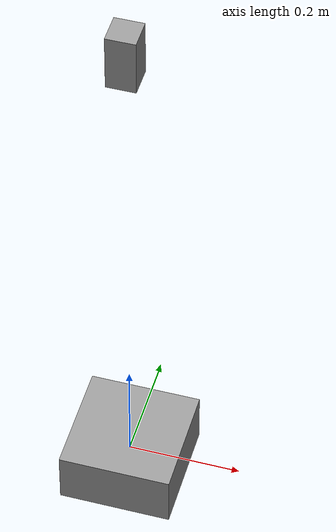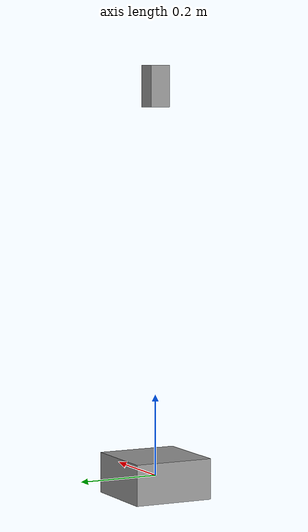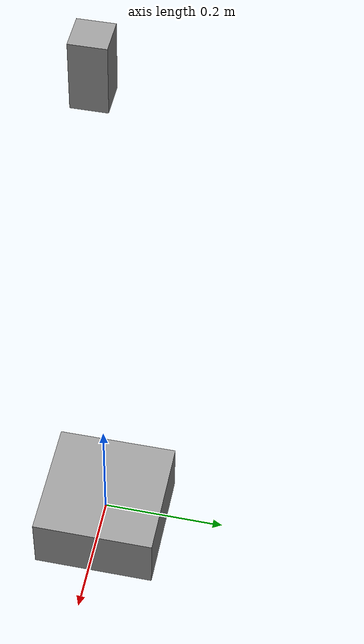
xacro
<?xml version="1.0"?>
<robot name="ur10e_2f_gripper" xmlns:xacro="http://www.ros.org/wiki/xacro">

  <!-- include the base ur10e -->
  <xacro:include filename="$(find universal_robots_ros2_gz_simulation)/urdf/ur10e.urdf.xacro"/>

  <!-- include the gripper macro -->
  <xacro:include filename="$(find universal_robots_ros2_gz_simulation)/urdf/robotiq_2f_gripper.urdf.xacro"/>

  <!-- attach gripper to wrist_3_link -->
  <xacro:property name="parent_link" value="ee_link"/> <!-- or "wrist_3_link" depending on your chain -->
  <!-- Use the macro defined in robotiq_2f_gripper.urdf.xacro -->
  <xacro:robotiq_2f_gripper parent="${parent_link}" prefix="gripper_"/>

</robot>

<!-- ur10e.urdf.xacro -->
<robot name="ur10e" xmlns:xacro="http://www.ros.org/wiki/xacro">

  <!-- Materials -->
  <material name="grey">
    <color rgba="0.6 0.6 0.6 1.0"/>
  </material>

  <!-- Base link -->
  <link name="base_link">
    <visual>
      <geometry>
        <box size="0.2 0.2 0.1"/>
      </geometry>
      <material name="grey"/>
    </visual>
    <collision>
      <geometry>
        <box size="0.2 0.2 0.1"/>
      </geometry>
    </collision>
    <inertial>
      <mass value="5.0"/>
      <inertia ixx="0.1" ixy="0.0" ixz="0.0" iyy="0.1" iyz="0.0" izz="0.1"/>
    </inertial>
  </link>

  <!-- Simplified joint chain -->
  <joint name="shoulder_pan_joint" type="revolute">
    <parent link="base_link"/>
    <child link="shoulder_link"/>
    <origin xyz="0 0 0.1" rpy="0 0 0"/>
    <axis xyz="0 0 1"/>
    <limit lower="-3.14" upper="3.14" effort="150" velocity="1.5"/>
  </joint>

  <link name="shoulder_link"/>
  <joint name="shoulder_lift_joint" type="revolute">
    <parent link="shoulder_link"/>
    <child link="upper_arm_link"/>
    <origin xyz="0 0 0.1" rpy="0 0 0"/>
    <axis xyz="0 1 0"/>
    <limit lower="-3.14" upper="3.14" effort="150" velocity="1.5"/>
  </joint>

  <link name="upper_arm_link"/>
  <joint name="elbow_joint" type="revolute">
    <parent link="upper_arm_link"/>
    <child link="forearm_link"/>
    <origin xyz="0 0 0.3" rpy="0 0 0"/>
    <axis xyz="0 1 0"/>
    <limit lower="-3.14" upper="3.14" effort="150" velocity="1.5"/>
  </joint>

  <link name="forearm_link"/>
  <joint name="wrist_1_joint" type="revolute">
    <parent link="forearm_link"/>
    <child link="wrist_1_link"/>
    <origin xyz="0 0 0.25" rpy="0 0 0"/>
    <axis xyz="0 1 0"/>
    <limit lower="-3.14" upper="3.14" effort="28" velocity="1.5"/>
  </joint>

  <link name="wrist_1_link"/>
  <joint name="wrist_2_joint" type="revolute">
    <parent link="wrist_1_link"/>
    <child link="wrist_2_link"/>
    <origin xyz="0 0 0.1" rpy="0 0 0"/>
    <axis xyz="0 0 1"/>
    <limit lower="-3.14" upper="3.14" effort="28" velocity="1.5"/>
  </joint>

  <link name="wrist_2_link"/>
  <joint name="wrist_3_joint" type="revolute">
    <parent link="wrist_2_link"/>
    <child link="wrist_3_link"/>
    <origin xyz="0 0 0.1" rpy="0 0 0"/>
    <axis xyz="0 1 0"/>
    <limit lower="-3.14" upper="3.14" effort="28" velocity="1.5"/>
  </joint>

  <link name="wrist_3_link"/>

  <!-- Add a fixed joint attaching an 'ee_link' to wrist_3_link so the tree is connected -->
  <link name="ee_link"/>
  <joint name="wrist_3_to_ee_joint" type="fixed">
    <parent link="wrist_3_link"/>
    <child link="ee_link"/>
    <origin xyz="0 0 0" rpy="0 0 0"/>
  </joint>

</robot>

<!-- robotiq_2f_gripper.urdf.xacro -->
<robot xmlns:xacro="http://www.ros.org/wiki/xacro">
  <xacro:macro name="robotiq_2f_gripper" params="parent prefix">
    <!-- Dummy gripper geometry -->
    <link name="${prefix}gripper_base">
      <visual>
        <geometry>
          <box size="0.05 0.05 0.1"/>
        </geometry>
        <material name="gray">
          <color rgba="0.6 0.6 0.6 1.0"/>
        </material>
      </visual>
    </link>

    <joint name="${prefix}gripper_mount" type="fixed">
      <parent link="${parent}"/>
      <child link="${prefix}gripper_base"/>
    </joint>
  </xacro:macro>
</robot>
